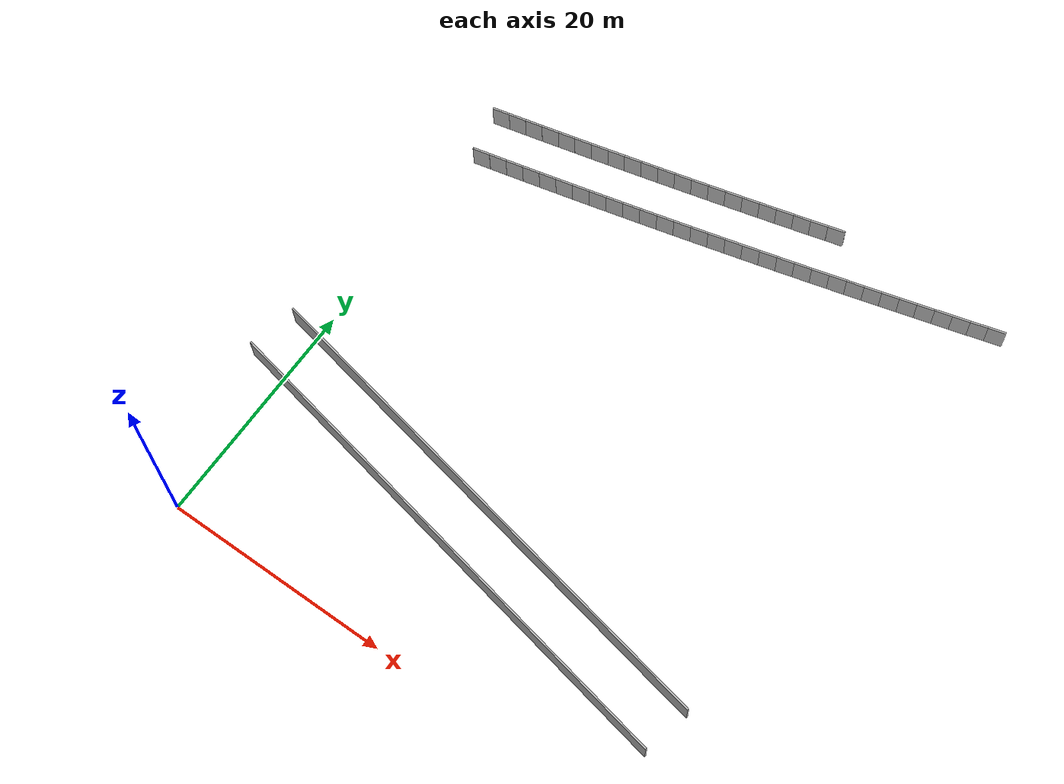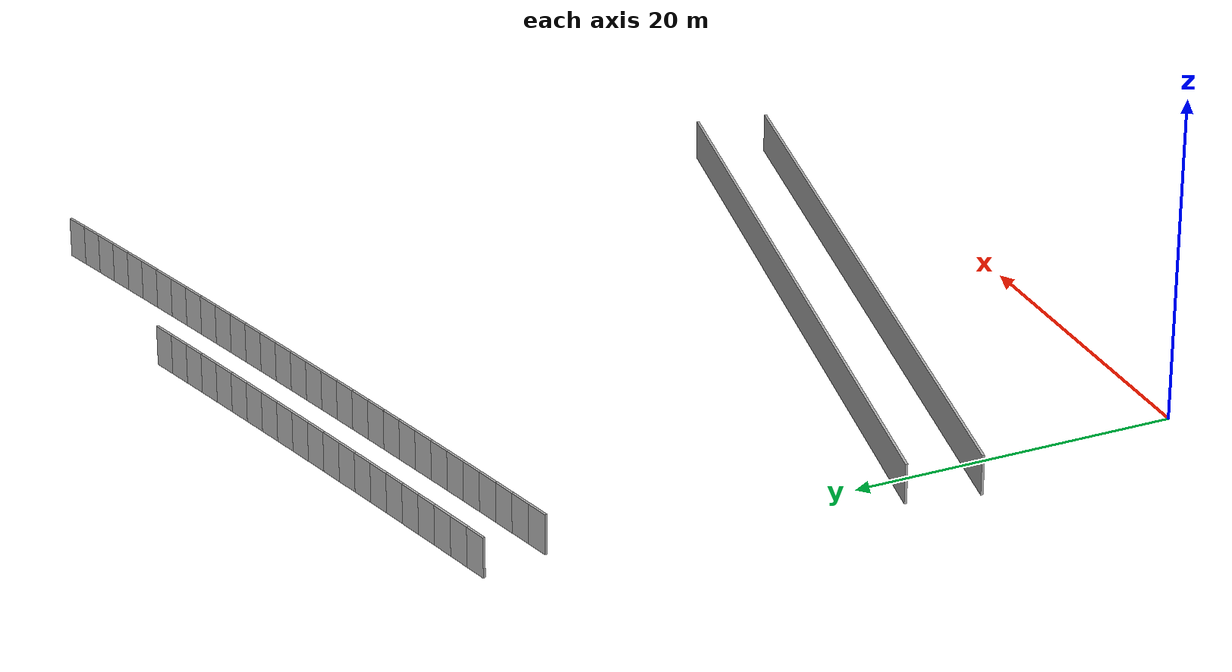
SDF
<?xml version="1.0" ?>
<sdf version="1.6">
  <model name="sps_3003">
    <pose frame="">0 0 0 0 -0 0</pose>
    <static>1</static>
    <self_collide>0</self_collide>
    <allow_auto_disable>0</allow_auto_disable>
    <link name="Wall3580">
      <kinematic>0</kinematic>
      <gravity>1</gravity>
      <self_collide>0</self_collide>
      <collision name="collision">
        <geometry>
          <box>
            <size>45.9354 0.15 2.5</size>
          </box>
        </geometry>
        <pose frame="">0 0 0 0 -0 0</pose>
      </collision>
      <visual name="visual">
        <geometry>
          <box>
            <size>45.9354 0.15 2.5</size>
          </box>
        </geometry>
        <pose frame="">0 0 0 0 -0 0</pose>
        <cast_shadows>1</cast_shadows>
        <transparency>0.0</transparency>
      </visual>
      <pose frame="">19.2007 9.50188 1.25 0 -0 2.94963</pose>
    </link>
    <link name="Wall3806">
      <kinematic>0</kinematic>
      <gravity>1</gravity>
      <self_collide>0</self_collide>
      <collision name="collision">
        <geometry>
          <box>
            <size>1.49651 0.15 2.5</size>
          </box>
        </geometry>
        <pose frame="">0 0 0 0 -0 0</pose>
      </collision>
      <visual name="visual">
        <geometry>
          <box>
            <size>1.49651 0.15 2.5</size>
          </box>
        </geometry>
        <pose frame="">0 0 0 0 -0 0</pose>
        <cast_shadows>1</cast_shadows>
        <transparency>0.0</transparency>
      </visual>
      <pose frame="">0.447166 42.7136 1.25 0 -0 0.224402</pose>
    </link>
    <link name="Wall3807">
      <kinematic>0</kinematic>
      <gravity>1</gravity>
      <self_collide>0</self_collide>
      <collision name="collision">
        <geometry>
          <box>
            <size>1.49664 0.15 2.5</size>
          </box>
        </geometry>
        <pose frame="">0 0 0 0 -0 0</pose>
      </collision>
      <visual name="visual">
        <geometry>
          <box>
            <size>1.49664 0.15 2.5</size>
          </box>
        </geometry>
        <pose frame="">0 0 0 0 -0 0</pose>
        <cast_shadows>1</cast_shadows>
        <transparency>0.0</transparency>
      </visual>
      <pose frame="">1.90597 43.0477 1.25 0 -0 0.225888</pose>
    </link>
    <link name="Wall3808">
      <kinematic>0</kinematic>
      <gravity>1</gravity>
      <self_collide>0</self_collide>
      <collision name="collision">
        <geometry>
          <box>
            <size>1.49658 0.15 2.5</size>
          </box>
        </geometry>
        <pose frame="">0 0 0 0 -0 0</pose>
      </collision>
      <visual name="visual">
        <geometry>
          <box>
            <size>1.49658 0.15 2.5</size>
          </box>
        </geometry>
        <pose frame="">0 0 0 0 -0 0</pose>
        <cast_shadows>1</cast_shadows>
        <transparency>0.0</transparency>
      </visual>
      <pose frame="">3.36428 43.3841 1.25 0 -0 0.227529</pose>
    </link>
    <link name="Wall3809">
      <kinematic>0</kinematic>
      <gravity>1</gravity>
      <self_collide>0</self_collide>
      <collision name="collision">
        <geometry>
          <box>
            <size>1.49644 0.15 2.5</size>
          </box>
        </geometry>
        <pose frame="">0 0 0 0 -0 0</pose>
      </collision>
      <visual name="visual">
        <geometry>
          <box>
            <size>1.49644 0.15 2.5</size>
          </box>
        </geometry>
        <pose frame="">0 0 0 0 -0 0</pose>
        <cast_shadows>1</cast_shadows>
        <transparency>0.0</transparency>
      </visual>
      <pose frame="">4.82198 43.7227 1.25 0 -0 0.228933</pose>
    </link>
    <link name="Wall3810">
      <kinematic>0</kinematic>
      <gravity>1</gravity>
      <self_collide>0</self_collide>
      <collision name="collision">
        <geometry>
          <box>
            <size>1.49662 0.15 2.5</size>
          </box>
        </geometry>
        <pose frame="">0 0 0 0 -0 0</pose>
      </collision>
      <visual name="visual">
        <geometry>
          <box>
            <size>1.49662 0.15 2.5</size>
          </box>
        </geometry>
        <pose frame="">0 0 0 0 -0 0</pose>
        <cast_shadows>1</cast_shadows>
        <transparency>0.0</transparency>
      </visual>
      <pose frame="">6.27917 44.0636 1.25 0 -0 0.230705</pose>
    </link>
    <link name="Wall3811">
      <kinematic>0</kinematic>
      <gravity>1</gravity>
      <self_collide>0</self_collide>
      <collision name="collision">
        <geometry>
          <box>
            <size>1.49663 0.15 2.5</size>
          </box>
        </geometry>
        <pose frame="">0 0 0 0 -0 0</pose>
      </collision>
      <visual name="visual">
        <geometry>
          <box>
            <size>1.49663 0.15 2.5</size>
          </box>
        </geometry>
        <pose frame="">0 0 0 0 -0 0</pose>
        <cast_shadows>1</cast_shadows>
        <transparency>0.0</transparency>
      </visual>
      <pose frame="">7.73586 44.407 1.25 0 -0 0.232338</pose>
    </link>
    <link name="Wall3812">
      <kinematic>0</kinematic>
      <gravity>1</gravity>
      <self_collide>0</self_collide>
      <collision name="collision">
        <geometry>
          <box>
            <size>1.49655 0.15 2.5</size>
          </box>
        </geometry>
        <pose frame="">0 0 0 0 -0 0</pose>
      </collision>
      <visual name="visual">
        <geometry>
          <box>
            <size>1.49655 0.15 2.5</size>
          </box>
        </geometry>
        <pose frame="">0 0 0 0 -0 0</pose>
        <cast_shadows>1</cast_shadows>
        <transparency>0.0</transparency>
      </visual>
      <pose frame="">9.19198 44.7527 1.25 0 -0 0.23386</pose>
    </link>
    <link name="Wall3813">
      <kinematic>0</kinematic>
      <gravity>1</gravity>
      <self_collide>0</self_collide>
      <collision name="collision">
        <geometry>
          <box>
            <size>1.49647 0.15 2.5</size>
          </box>
        </geometry>
        <pose frame="">0 0 0 0 -0 0</pose>
      </collision>
      <visual name="visual">
        <geometry>
          <box>
            <size>1.49647 0.15 2.5</size>
          </box>
        </geometry>
        <pose frame="">0 0 0 0 -0 0</pose>
        <cast_shadows>1</cast_shadows>
        <transparency>0.0</transparency>
      </visual>
      <pose frame="">10.6475 45.1006 1.25 0 -0 0.235383</pose>
    </link>
    <link name="Wall3814">
      <kinematic>0</kinematic>
      <gravity>1</gravity>
      <self_collide>0</self_collide>
      <collision name="collision">
        <geometry>
          <box>
            <size>1.49656 0.15 2.5</size>
          </box>
        </geometry>
        <pose frame="">0 0 0 0 -0 0</pose>
      </collision>
      <visual name="visual">
        <geometry>
          <box>
            <size>1.49656 0.15 2.5</size>
          </box>
        </geometry>
        <pose frame="">0 0 0 0 -0 0</pose>
        <cast_shadows>1</cast_shadows>
        <transparency>0.0</transparency>
      </visual>
      <pose frame="">12.1025 45.4507 1.25 0 -0 0.236877</pose>
    </link>
    <link name="Wall3815">
      <kinematic>0</kinematic>
      <gravity>1</gravity>
      <self_collide>0</self_collide>
      <collision name="collision">
        <geometry>
          <box>
            <size>1.49635 0.15 2.5</size>
          </box>
        </geometry>
        <pose frame="">0 0 0 0 -0 0</pose>
      </collision>
      <visual name="visual">
        <geometry>
          <box>
            <size>1.49635 0.15 2.5</size>
          </box>
        </geometry>
        <pose frame="">0 0 0 0 -0 0</pose>
        <cast_shadows>1</cast_shadows>
        <transparency>0.0</transparency>
      </visual>
      <pose frame="">13.5568 45.8031 1.25 0 -0 0.238548</pose>
    </link>
    <link name="Wall3816">
      <kinematic>0</kinematic>
      <gravity>1</gravity>
      <self_collide>0</self_collide>
      <collision name="collision">
        <geometry>
          <box>
            <size>1.49658 0.15 2.5</size>
          </box>
        </geometry>
        <pose frame="">0 0 0 0 -0 0</pose>
      </collision>
      <visual name="visual">
        <geometry>
          <box>
            <size>1.49658 0.15 2.5</size>
          </box>
        </geometry>
        <pose frame="">0 0 0 0 -0 0</pose>
        <cast_shadows>1</cast_shadows>
        <transparency>0.0</transparency>
      </visual>
      <pose frame="">15.0106 46.1579 1.25 0 -0 0.240191</pose>
    </link>
    <link name="Wall3817">
      <kinematic>0</kinematic>
      <gravity>1</gravity>
      <self_collide>0</self_collide>
      <collision name="collision">
        <geometry>
          <box>
            <size>1.49673 0.15 2.5</size>
          </box>
        </geometry>
        <pose frame="">0 0 0 0 -0 0</pose>
      </collision>
      <visual name="visual">
        <geometry>
          <box>
            <size>1.49673 0.15 2.5</size>
          </box>
        </geometry>
        <pose frame="">0 0 0 0 -0 0</pose>
        <cast_shadows>1</cast_shadows>
        <transparency>0.0</transparency>
      </visual>
      <pose frame="">16.464 46.5151 1.25 0 -0 0.241804</pose>
    </link>
    <link name="Wall3818">
      <kinematic>0</kinematic>
      <gravity>1</gravity>
      <self_collide>0</self_collide>
      <collision name="collision">
        <geometry>
          <box>
            <size>1.49649 0.15 2.5</size>
          </box>
        </geometry>
        <pose frame="">0 0 0 0 -0 0</pose>
      </collision>
      <visual name="visual">
        <geometry>
          <box>
            <size>1.49649 0.15 2.5</size>
          </box>
        </geometry>
        <pose frame="">0 0 0 0 -0 0</pose>
        <cast_shadows>1</cast_shadows>
        <transparency>0.0</transparency>
      </visual>
      <pose frame="">17.9168 46.8746 1.25 0 -0 0.243356</pose>
    </link>
    <link name="Wall3819">
      <kinematic>0</kinematic>
      <gravity>1</gravity>
      <self_collide>0</self_collide>
      <collision name="collision">
        <geometry>
          <box>
            <size>1.49649 0.15 2.5</size>
          </box>
        </geometry>
        <pose frame="">0 0 0 0 -0 0</pose>
      </collision>
      <visual name="visual">
        <geometry>
          <box>
            <size>1.49649 0.15 2.5</size>
          </box>
        </geometry>
        <pose frame="">0 0 0 0 -0 0</pose>
        <cast_shadows>1</cast_shadows>
        <transparency>0.0</transparency>
      </visual>
      <pose frame="">19.3689 47.2363 1.25 0 -0 0.24487</pose>
    </link>
    <link name="Wall3820">
      <kinematic>0</kinematic>
      <gravity>1</gravity>
      <self_collide>0</self_collide>
      <collision name="collision">
        <geometry>
          <box>
            <size>1.49643 0.15 2.5</size>
          </box>
        </geometry>
        <pose frame="">0 0 0 0 -0 0</pose>
      </collision>
      <visual name="visual">
        <geometry>
          <box>
            <size>1.49643 0.15 2.5</size>
          </box>
        </geometry>
        <pose frame="">0 0 0 0 -0 0</pose>
        <cast_shadows>1</cast_shadows>
        <transparency>0.0</transparency>
      </visual>
      <pose frame="">20.8205 47.6003 1.25 0 -0 0.246561</pose>
    </link>
    <link name="Wall3821">
      <kinematic>0</kinematic>
      <gravity>1</gravity>
      <self_collide>0</self_collide>
      <collision name="collision">
        <geometry>
          <box>
            <size>1.49646 0.15 2.5</size>
          </box>
        </geometry>
        <pose frame="">0 0 0 0 -0 0</pose>
      </collision>
      <visual name="visual">
        <geometry>
          <box>
            <size>1.49646 0.15 2.5</size>
          </box>
        </geometry>
        <pose frame="">0 0 0 0 -0 0</pose>
        <cast_shadows>1</cast_shadows>
        <transparency>0.0</transparency>
      </visual>
      <pose frame="">22.2714 47.9667 1.25 0 -0 0.248154</pose>
    </link>
    <link name="Wall3822">
      <kinematic>0</kinematic>
      <gravity>1</gravity>
      <self_collide>0</self_collide>
      <collision name="collision">
        <geometry>
          <box>
            <size>1.49656 0.15 2.5</size>
          </box>
        </geometry>
        <pose frame="">0 0 0 0 -0 0</pose>
      </collision>
      <visual name="visual">
        <geometry>
          <box>
            <size>1.49656 0.15 2.5</size>
          </box>
        </geometry>
        <pose frame="">0 0 0 0 -0 0</pose>
        <cast_shadows>1</cast_shadows>
        <transparency>0.0</transparency>
      </visual>
      <pose frame="">23.7218 48.3353 1.25 0 -0 0.249568</pose>
    </link>
    <link name="Wall3823">
      <kinematic>0</kinematic>
      <gravity>1</gravity>
      <self_collide>0</self_collide>
      <collision name="collision">
        <geometry>
          <box>
            <size>1.4966 0.15 2.5</size>
          </box>
        </geometry>
        <pose frame="">0 0 0 0 -0 0</pose>
      </collision>
      <visual name="visual">
        <geometry>
          <box>
            <size>1.4966 0.15 2.5</size>
          </box>
        </geometry>
        <pose frame="">0 0 0 0 -0 0</pose>
        <cast_shadows>1</cast_shadows>
        <transparency>0.0</transparency>
      </visual>
      <pose frame="">25.1717 48.7062 1.25 0 -0 0.251329</pose>
    </link>
    <link name="Wall3824">
      <kinematic>0</kinematic>
      <gravity>1</gravity>
      <self_collide>0</self_collide>
      <collision name="collision">
        <geometry>
          <box>
            <size>1.49657 0.15 2.5</size>
          </box>
        </geometry>
        <pose frame="">0 0 0 0 -0 0</pose>
      </collision>
      <visual name="visual">
        <geometry>
          <box>
            <size>1.49657 0.15 2.5</size>
          </box>
        </geometry>
        <pose frame="">0 0 0 0 -0 0</pose>
        <cast_shadows>1</cast_shadows>
        <transparency>0.0</transparency>
      </visual>
      <pose frame="">26.621 49.0794 1.25 0 -0 0.252724</pose>
    </link>
    <link name="Wall3825">
      <kinematic>0</kinematic>
      <gravity>1</gravity>
      <self_collide>0</self_collide>
      <collision name="collision">
        <geometry>
          <box>
            <size>1.49657 0.15 2.5</size>
          </box>
        </geometry>
        <pose frame="">0 0 0 0 -0 0</pose>
      </collision>
      <visual name="visual">
        <geometry>
          <box>
            <size>1.49657 0.15 2.5</size>
          </box>
        </geometry>
        <pose frame="">0 0 0 0 -0 0</pose>
        <cast_shadows>1</cast_shadows>
        <transparency>0.0</transparency>
      </visual>
      <pose frame="">28.0697 49.4549 1.25 0 -0 0.254494</pose>
    </link>
    <link name="Wall3826">
      <kinematic>0</kinematic>
      <gravity>1</gravity>
      <self_collide>0</self_collide>
      <collision name="collision">
        <geometry>
          <box>
            <size>1.49661 0.15 2.5</size>
          </box>
        </geometry>
        <pose frame="">0 0 0 0 -0 0</pose>
      </collision>
      <visual name="visual">
        <geometry>
          <box>
            <size>1.49661 0.15 2.5</size>
          </box>
        </geometry>
        <pose frame="">0 0 0 0 -0 0</pose>
        <cast_shadows>1</cast_shadows>
        <transparency>0.0</transparency>
      </visual>
      <pose frame="">29.5178 49.8328 1.25 0 -0 0.256047</pose>
    </link>
    <link name="Wall7355">
      <kinematic>0</kinematic>
      <gravity>1</gravity>
      <self_collide>0</self_collide>
      <collision name="collision">
        <geometry>
          <box>
            <size>45.8889 0.15 2.5</size>
          </box>
        </geometry>
        <pose frame="">0 0 0 0 -0 0</pose>
      </collision>
      <visual name="visual">
        <geometry>
          <box>
            <size>45.8889 0.15 2.5</size>
          </box>
        </geometry>
        <pose frame="">0 0 0 0 -0 0</pose>
        <cast_shadows>1</cast_shadows>
        <transparency>0.0</transparency>
      </visual>
      <pose frame="">20.068 13.8153 1.25 0 -0 2.94962</pose>
    </link>
    <link name="Wall7581">
      <kinematic>0</kinematic>
      <gravity>1</gravity>
      <self_collide>0</self_collide>
      <collision name="collision">
        <geometry>
          <box>
            <size>1.50307 0.15 2.5</size>
          </box>
        </geometry>
        <pose frame="">0 0 0 0 -0 0</pose>
      </collision>
      <visual name="visual">
        <geometry>
          <box>
            <size>1.50307 0.15 2.5</size>
          </box>
        </geometry>
        <pose frame="">0 0 0 0 -0 0</pose>
        <cast_shadows>1</cast_shadows>
        <transparency>0.0</transparency>
      </visual>
      <pose frame="">1.37115 38.6775 1.25 0 -0 0.224364</pose>
    </link>
    <link name="Wall7582">
      <kinematic>0</kinematic>
      <gravity>1</gravity>
      <self_collide>0</self_collide>
      <collision name="collision">
        <geometry>
          <box>
            <size>1.50296 0.15 2.5</size>
          </box>
        </geometry>
        <pose frame="">0 0 0 0 -0 0</pose>
      </collision>
      <visual name="visual">
        <geometry>
          <box>
            <size>1.50296 0.15 2.5</size>
          </box>
        </geometry>
        <pose frame="">0 0 0 0 -0 0</pose>
        <cast_shadows>1</cast_shadows>
        <transparency>0.0</transparency>
      </visual>
      <pose frame="">2.83623 39.013 1.25 0 -0 0.22588</pose>
    </link>
    <link name="Wall7583">
      <kinematic>0</kinematic>
      <gravity>1</gravity>
      <self_collide>0</self_collide>
      <collision name="collision">
        <geometry>
          <box>
            <size>1.50314 0.15 2.5</size>
          </box>
        </geometry>
        <pose frame="">0 0 0 0 -0 0</pose>
      </collision>
      <visual name="visual">
        <geometry>
          <box>
            <size>1.50314 0.15 2.5</size>
          </box>
        </geometry>
        <pose frame="">0 0 0 0 -0 0</pose>
        <cast_shadows>1</cast_shadows>
        <transparency>0.0</transparency>
      </visual>
      <pose frame="">4.30083 39.3508 1.25 0 -0 0.227478</pose>
    </link>
    <link name="Wall7584">
      <kinematic>0</kinematic>
      <gravity>1</gravity>
      <self_collide>0</self_collide>
      <collision name="collision">
        <geometry>
          <box>
            <size>1.50304 0.15 2.5</size>
          </box>
        </geometry>
        <pose frame="">0 0 0 0 -0 0</pose>
      </collision>
      <visual name="visual">
        <geometry>
          <box>
            <size>1.50304 0.15 2.5</size>
          </box>
        </geometry>
        <pose frame="">0 0 0 0 -0 0</pose>
        <cast_shadows>1</cast_shadows>
        <transparency>0.0</transparency>
      </visual>
      <pose frame="">5.76495 39.6909 1.25 0 -0 0.228993</pose>
    </link>
    <link name="Wall7585">
      <kinematic>0</kinematic>
      <gravity>1</gravity>
      <self_collide>0</self_collide>
      <collision name="collision">
        <geometry>
          <box>
            <size>1.50305 0.15 2.5</size>
          </box>
        </geometry>
        <pose frame="">0 0 0 0 -0 0</pose>
      </collision>
      <visual name="visual">
        <geometry>
          <box>
            <size>1.50305 0.15 2.5</size>
          </box>
        </geometry>
        <pose frame="">0 0 0 0 -0 0</pose>
        <cast_shadows>1</cast_shadows>
        <transparency>0.0</transparency>
      </visual>
      <pose frame="">7.22845 40.0334 1.25 0 -0 0.230786</pose>
    </link>
    <link name="Wall7586">
      <kinematic>0</kinematic>
      <gravity>1</gravity>
      <self_collide>0</self_collide>
      <collision name="collision">
        <geometry>
          <box>
            <size>1.50319 0.15 2.5</size>
          </box>
        </geometry>
        <pose frame="">0 0 0 0 -0 0</pose>
      </collision>
      <visual name="visual">
        <geometry>
          <box>
            <size>1.50319 0.15 2.5</size>
          </box>
        </geometry>
        <pose frame="">0 0 0 0 -0 0</pose>
        <cast_shadows>1</cast_shadows>
        <transparency>0.0</transparency>
      </visual>
      <pose frame="">8.69146 40.3783 1.25 0 -0 0.232265</pose>
    </link>
    <link name="Wall7587">
      <kinematic>0</kinematic>
      <gravity>1</gravity>
      <self_collide>0</self_collide>
      <collision name="collision">
        <geometry>
          <box>
            <size>1.50309 0.15 2.5</size>
          </box>
        </geometry>
        <pose frame="">0 0 0 0 -0 0</pose>
      </collision>
      <visual name="visual">
        <geometry>
          <box>
            <size>1.50309 0.15 2.5</size>
          </box>
        </geometry>
        <pose frame="">0 0 0 0 -0 0</pose>
        <cast_shadows>1</cast_shadows>
        <transparency>0.0</transparency>
      </visual>
      <pose frame="">10.154 40.7255 1.25 0 -0 0.233909</pose>
    </link>
    <link name="Wall7588">
      <kinematic>0</kinematic>
      <gravity>1</gravity>
      <self_collide>0</self_collide>
      <collision name="collision">
        <geometry>
          <box>
            <size>1.50302 0.15 2.5</size>
          </box>
        </geometry>
        <pose frame="">0 0 0 0 -0 0</pose>
      </collision>
      <visual name="visual">
        <geometry>
          <box>
            <size>1.50302 0.15 2.5</size>
          </box>
        </geometry>
        <pose frame="">0 0 0 0 -0 0</pose>
        <cast_shadows>1</cast_shadows>
        <transparency>0.0</transparency>
      </visual>
      <pose frame="">11.6158 41.0749 1.25 0 -0 0.235297</pose>
    </link>
    <link name="Wall7589">
      <kinematic>0</kinematic>
      <gravity>1</gravity>
      <self_collide>0</self_collide>
      <collision name="collision">
        <geometry>
          <box>
            <size>1.50305 0.15 2.5</size>
          </box>
        </geometry>
        <pose frame="">0 0 0 0 -0 0</pose>
      </collision>
      <visual name="visual">
        <geometry>
          <box>
            <size>1.50305 0.15 2.5</size>
          </box>
        </geometry>
        <pose frame="">0 0 0 0 -0 0</pose>
        <cast_shadows>1</cast_shadows>
        <transparency>0.0</transparency>
      </visual>
      <pose frame="">13.0771 41.4266 1.25 0 -0 0.23709</pose>
    </link>
    <link name="Wall7590">
      <kinematic>0</kinematic>
      <gravity>1</gravity>
      <self_collide>0</self_collide>
      <collision name="collision">
        <geometry>
          <box>
            <size>1.50319 0.15 2.5</size>
          </box>
        </geometry>
        <pose frame="">0 0 0 0 -0 0</pose>
      </collision>
      <visual name="visual">
        <geometry>
          <box>
            <size>1.50319 0.15 2.5</size>
          </box>
        </geometry>
        <pose frame="">0 0 0 0 -0 0</pose>
        <cast_shadows>1</cast_shadows>
        <transparency>0.0</transparency>
      </visual>
      <pose frame="">14.538 41.7807 1.25 0 -0 0.238528</pose>
    </link>
    <link name="Wall7591">
      <kinematic>0</kinematic>
      <gravity>1</gravity>
      <self_collide>0</self_collide>
      <collision name="collision">
        <geometry>
          <box>
            <size>1.50312 0.15 2.5</size>
          </box>
        </geometry>
        <pose frame="">0 0 0 0 -0 0</pose>
      </collision>
      <visual name="visual">
        <geometry>
          <box>
            <size>1.50312 0.15 2.5</size>
          </box>
        </geometry>
        <pose frame="">0 0 0 0 -0 0</pose>
        <cast_shadows>1</cast_shadows>
        <transparency>0.0</transparency>
      </visual>
      <pose frame="">15.9983 42.1371 1.25 0 -0 0.240212</pose>
    </link>
    <link name="Wall7592">
      <kinematic>0</kinematic>
      <gravity>1</gravity>
      <self_collide>0</self_collide>
      <collision name="collision">
        <geometry>
          <box>
            <size>1.50311 0.15 2.5</size>
          </box>
        </geometry>
        <pose frame="">0 0 0 0 -0 0</pose>
      </collision>
      <visual name="visual">
        <geometry>
          <box>
            <size>1.50311 0.15 2.5</size>
          </box>
        </geometry>
        <pose frame="">0 0 0 0 -0 0</pose>
        <cast_shadows>1</cast_shadows>
        <transparency>0.0</transparency>
      </visual>
      <pose frame="">17.4579 42.4958 1.25 0 -0 0.241719</pose>
    </link>
    <link name="Wall7593">
      <kinematic>0</kinematic>
      <gravity>1</gravity>
      <self_collide>0</self_collide>
      <collision name="collision">
        <geometry>
          <box>
            <size>1.50315 0.15 2.5</size>
          </box>
        </geometry>
        <pose frame="">0 0 0 0 -0 0</pose>
      </collision>
      <visual name="visual">
        <geometry>
          <box>
            <size>1.50315 0.15 2.5</size>
          </box>
        </geometry>
        <pose frame="">0 0 0 0 -0 0</pose>
        <cast_shadows>1</cast_shadows>
        <transparency>0.0</transparency>
      </visual>
      <pose frame="">18.917 42.8569 1.25 0 -0 0.243511</pose>
    </link>
    <link name="Wall7594">
      <kinematic>0</kinematic>
      <gravity>1</gravity>
      <self_collide>0</self_collide>
      <collision name="collision">
        <geometry>
          <box>
            <size>1.50303 0.15 2.5</size>
          </box>
        </geometry>
        <pose frame="">0 0 0 0 -0 0</pose>
      </collision>
      <visual name="visual">
        <geometry>
          <box>
            <size>1.50303 0.15 2.5</size>
          </box>
        </geometry>
        <pose frame="">0 0 0 0 -0 0</pose>
        <cast_shadows>1</cast_shadows>
        <transparency>0.0</transparency>
      </visual>
      <pose frame="">20.3755 43.2203 1.25 0 -0 0.24487</pose>
    </link>
    <link name="Wall7595">
      <kinematic>0</kinematic>
      <gravity>1</gravity>
      <self_collide>0</self_collide>
      <collision name="collision">
        <geometry>
          <box>
            <size>1.50304 0.15 2.5</size>
          </box>
        </geometry>
        <pose frame="">0 0 0 0 -0 0</pose>
      </collision>
      <visual name="visual">
        <geometry>
          <box>
            <size>1.50304 0.15 2.5</size>
          </box>
        </geometry>
        <pose frame="">0 0 0 0 -0 0</pose>
        <cast_shadows>1</cast_shadows>
        <transparency>0.0</transparency>
      </visual>
      <pose frame="">21.8335 43.5858 1.25 0 -0 0.246417</pose>
    </link>
    <link name="Wall7596">
      <kinematic>0</kinematic>
      <gravity>1</gravity>
      <self_collide>0</self_collide>
      <collision name="collision">
        <geometry>
          <box>
            <size>1.50296 0.15 2.5</size>
          </box>
        </geometry>
        <pose frame="">0 0 0 0 -0 0</pose>
      </collision>
      <visual name="visual">
        <geometry>
          <box>
            <size>1.50296 0.15 2.5</size>
          </box>
        </geometry>
        <pose frame="">0 0 0 0 -0 0</pose>
        <cast_shadows>1</cast_shadows>
        <transparency>0.0</transparency>
      </visual>
      <pose frame="">23.2908 43.9536 1.25 0 -0 0.248022</pose>
    </link>
    <link name="Wall7597">
      <kinematic>0</kinematic>
      <gravity>1</gravity>
      <self_collide>0</self_collide>
      <collision name="collision">
        <geometry>
          <box>
            <size>1.50303 0.15 2.5</size>
          </box>
        </geometry>
        <pose frame="">0 0 0 0 -0 0</pose>
      </collision>
      <visual name="visual">
        <geometry>
          <box>
            <size>1.50303 0.15 2.5</size>
          </box>
        </geometry>
        <pose frame="">0 0 0 0 -0 0</pose>
        <cast_shadows>1</cast_shadows>
        <transparency>0.0</transparency>
      </visual>
      <pose frame="">24.7475 44.3238 1.25 0 -0 0.249686</pose>
    </link>
    <link name="Wall7598">
      <kinematic>0</kinematic>
      <gravity>1</gravity>
      <self_collide>0</self_collide>
      <collision name="collision">
        <geometry>
          <box>
            <size>1.50322 0.15 2.5</size>
          </box>
        </geometry>
        <pose frame="">0 0 0 0 -0 0</pose>
      </collision>
      <visual name="visual">
        <geometry>
          <box>
            <size>1.50322 0.15 2.5</size>
          </box>
        </geometry>
        <pose frame="">0 0 0 0 -0 0</pose>
        <cast_shadows>1</cast_shadows>
        <transparency>0.0</transparency>
      </visual>
      <pose frame="">26.2037 44.6964 1.25 0 -0 0.25133</pose>
    </link>
    <link name="Wall7599">
      <kinematic>0</kinematic>
      <gravity>1</gravity>
      <self_collide>0</self_collide>
      <collision name="collision">
        <geometry>
          <box>
            <size>1.50316 0.15 2.5</size>
          </box>
        </geometry>
        <pose frame="">0 0 0 0 -0 0</pose>
      </collision>
      <visual name="visual">
        <geometry>
          <box>
            <size>1.50316 0.15 2.5</size>
          </box>
        </geometry>
        <pose frame="">0 0 0 0 -0 0</pose>
        <cast_shadows>1</cast_shadows>
        <transparency>0.0</transparency>
      </visual>
      <pose frame="">27.6594 45.0713 1.25 0 -0 0.252808</pose>
    </link>
    <link name="Wall7600">
      <kinematic>0</kinematic>
      <gravity>1</gravity>
      <self_collide>0</self_collide>
      <collision name="collision">
        <geometry>
          <box>
            <size>1.50301 0.15 2.5</size>
          </box>
        </geometry>
        <pose frame="">0 0 0 0 -0 0</pose>
      </collision>
      <visual name="visual">
        <geometry>
          <box>
            <size>1.50301 0.15 2.5</size>
          </box>
        </geometry>
        <pose frame="">0 0 0 0 -0 0</pose>
        <cast_shadows>1</cast_shadows>
        <transparency>0.0</transparency>
      </visual>
      <pose frame="">29.1143 45.4485 1.25 0 -0 0.254513</pose>
    </link>
    <link name="Wall7601">
      <kinematic>0</kinematic>
      <gravity>1</gravity>
      <self_collide>0</self_collide>
      <collision name="collision">
        <geometry>
          <box>
            <size>1.50297 0.15 2.5</size>
          </box>
        </geometry>
        <pose frame="">0 0 0 0 -0 0</pose>
      </collision>
      <visual name="visual">
        <geometry>
          <box>
            <size>1.50297 0.15 2.5</size>
          </box>
        </geometry>
        <pose frame="">0 0 0 0 -0 0</pose>
        <cast_shadows>1</cast_shadows>
        <transparency>0.0</transparency>
      </visual>
      <pose frame="">30.5687 45.8279 1.25 0 -0 0.255862</pose>
    </link>
    <link name="Wall7602">
      <kinematic>0</kinematic>
      <gravity>1</gravity>
      <self_collide>0</self_collide>
      <collision name="collision">
        <geometry>
          <box>
            <size>1.50323 0.15 2.5</size>
          </box>
        </geometry>
        <pose frame="">0 0 0 0 -0 0</pose>
      </collision>
      <visual name="visual">
        <geometry>
          <box>
            <size>1.50323 0.15 2.5</size>
          </box>
        </geometry>
        <pose frame="">0 0 0 0 -0 0</pose>
        <cast_shadows>1</cast_shadows>
        <transparency>0.0</transparency>
      </visual>
      <pose frame="">32.0225 46.2097 1.25 0 -0 0.257791</pose>
    </link>
    <link name="Wall7603">
      <kinematic>0</kinematic>
      <gravity>1</gravity>
      <self_collide>0</self_collide>
      <collision name="collision">
        <geometry>
          <box>
            <size>1.50319 0.15 2.5</size>
          </box>
        </geometry>
        <pose frame="">0 0 0 0 -0 0</pose>
      </collision>
      <visual name="visual">
        <geometry>
          <box>
            <size>1.50319 0.15 2.5</size>
          </box>
        </geometry>
        <pose frame="">0 0 0 0 -0 0</pose>
        <cast_shadows>1</cast_shadows>
        <transparency>0.0</transparency>
      </visual>
      <pose frame="">33.4757 46.5939 1.25 0 -0 0.25914</pose>
    </link>
    <link name="Wall7604">
      <kinematic>0</kinematic>
      <gravity>1</gravity>
      <self_collide>0</self_collide>
      <collision name="collision">
        <geometry>
          <box>
            <size>1.50304 0.15 2.5</size>
          </box>
        </geometry>
        <pose frame="">0 0 0 0 -0 0</pose>
      </collision>
      <visual name="visual">
        <geometry>
          <box>
            <size>1.50304 0.15 2.5</size>
          </box>
        </geometry>
        <pose frame="">0 0 0 0 -0 0</pose>
        <cast_shadows>1</cast_shadows>
        <transparency>0.0</transparency>
      </visual>
      <pose frame="">34.9283 46.9803 1.25 0 -0 0.260806</pose>
    </link>
    <link name="Wall7605">
      <kinematic>0</kinematic>
      <gravity>1</gravity>
      <self_collide>0</self_collide>
      <collision name="collision">
        <geometry>
          <box>
            <size>1.50303 0.15 2.5</size>
          </box>
        </geometry>
        <pose frame="">0 0 0 0 -0 0</pose>
      </collision>
      <visual name="visual">
        <geometry>
          <box>
            <size>1.50303 0.15 2.5</size>
          </box>
        </geometry>
        <pose frame="">0 0 0 0 -0 0</pose>
        <cast_shadows>1</cast_shadows>
        <transparency>0.0</transparency>
      </visual>
      <pose frame="">36.3802 47.369 1.25 0 -0 0.262363</pose>
    </link>
    <link name="Wall7606">
      <kinematic>0</kinematic>
      <gravity>1</gravity>
      <self_collide>0</self_collide>
      <collision name="collision">
        <geometry>
          <box>
            <size>1.50305 0.15 2.5</size>
          </box>
        </geometry>
        <pose frame="">0 0 0 0 -0 0</pose>
      </collision>
      <visual name="visual">
        <geometry>
          <box>
            <size>1.50305 0.15 2.5</size>
          </box>
        </geometry>
        <pose frame="">0 0 0 0 -0 0</pose>
        <cast_shadows>1</cast_shadows>
        <transparency>0.0</transparency>
      </visual>
      <pose frame="">37.8315 47.76 1.25 0 -0 0.263958</pose>
    </link>
    <link name="Wall7607">
      <kinematic>0</kinematic>
      <gravity>1</gravity>
      <self_collide>0</self_collide>
      <collision name="collision">
        <geometry>
          <box>
            <size>1.50311 0.15 2.5</size>
          </box>
        </geometry>
        <pose frame="">0 0 0 0 -0 0</pose>
      </collision>
      <visual name="visual">
        <geometry>
          <box>
            <size>1.50311 0.15 2.5</size>
          </box>
        </geometry>
        <pose frame="">0 0 0 0 -0 0</pose>
        <cast_shadows>1</cast_shadows>
        <transparency>0.0</transparency>
      </visual>
      <pose frame="">39.2822 48.1533 1.25 0 -0 0.265504</pose>
    </link>
    <link name="Wall7608">
      <kinematic>0</kinematic>
      <gravity>1</gravity>
      <self_collide>0</self_collide>
      <collision name="collision">
        <geometry>
          <box>
            <size>1.50304 0.15 2.5</size>
          </box>
        </geometry>
        <pose frame="">0 0 0 0 -0 0</pose>
      </collision>
      <visual name="visual">
        <geometry>
          <box>
            <size>1.50304 0.15 2.5</size>
          </box>
        </geometry>
        <pose frame="">0 0 0 0 -0 0</pose>
        <cast_shadows>1</cast_shadows>
        <transparency>0.0</transparency>
      </visual>
      <pose frame="">40.7324 48.5488 1.25 0 -0 0.267032</pose>
    </link>
    <link name="Wall7609">
      <kinematic>0</kinematic>
      <gravity>1</gravity>
      <self_collide>0</self_collide>
      <collision name="collision">
        <geometry>
          <box>
            <size>1.50314 0.15 2.5</size>
          </box>
        </geometry>
        <pose frame="">0 0 0 0 -0 0</pose>
      </collision>
      <visual name="visual">
        <geometry>
          <box>
            <size>1.50314 0.15 2.5</size>
          </box>
        </geometry>
        <pose frame="">0 0 0 0 -0 0</pose>
        <cast_shadows>1</cast_shadows>
        <transparency>0.0</transparency>
      </visual>
      <pose frame="">42.1818 48.9466 1.25 0 -0 0.268656</pose>
    </link>
    <link name="Wall7610">
      <kinematic>0</kinematic>
      <gravity>1</gravity>
      <self_collide>0</self_collide>
      <collision name="collision">
        <geometry>
          <box>
            <size>1.5032 0.15 2.5</size>
          </box>
        </geometry>
        <pose frame="">0 0 0 0 -0 0</pose>
      </collision>
      <visual name="visual">
        <geometry>
          <box>
            <size>1.5032 0.15 2.5</size>
          </box>
        </geometry>
        <pose frame="">0 0 0 0 -0 0</pose>
        <cast_shadows>1</cast_shadows>
        <transparency>0.0</transparency>
      </visual>
      <pose frame="">43.6308 49.3468 1.25 0 -0 0.27033</pose>
    </link>
    <link name="Wall7611">
      <kinematic>0</kinematic>
      <gravity>1</gravity>
      <self_collide>0</self_collide>
      <collision name="collision">
        <geometry>
          <box>
            <size>1.50296 0.15 2.5</size>
          </box>
        </geometry>
        <pose frame="">0 0 0 0 -0 0</pose>
      </collision>
      <visual name="visual">
        <geometry>
          <box>
            <size>1.50296 0.15 2.5</size>
          </box>
        </geometry>
        <pose frame="">0 0 0 0 -0 0</pose>
        <cast_shadows>1</cast_shadows>
        <transparency>0.0</transparency>
      </visual>
      <pose frame="">45.079 49.7492 1.25 0 -0 0.271723</pose>
    </link>
  </model>
</sdf>
